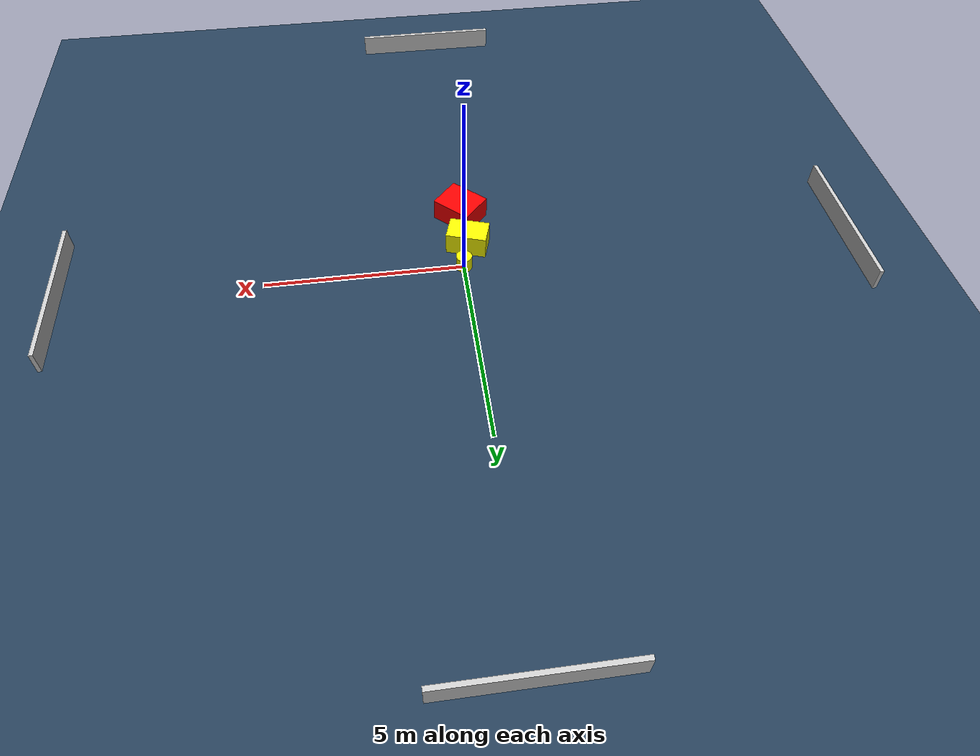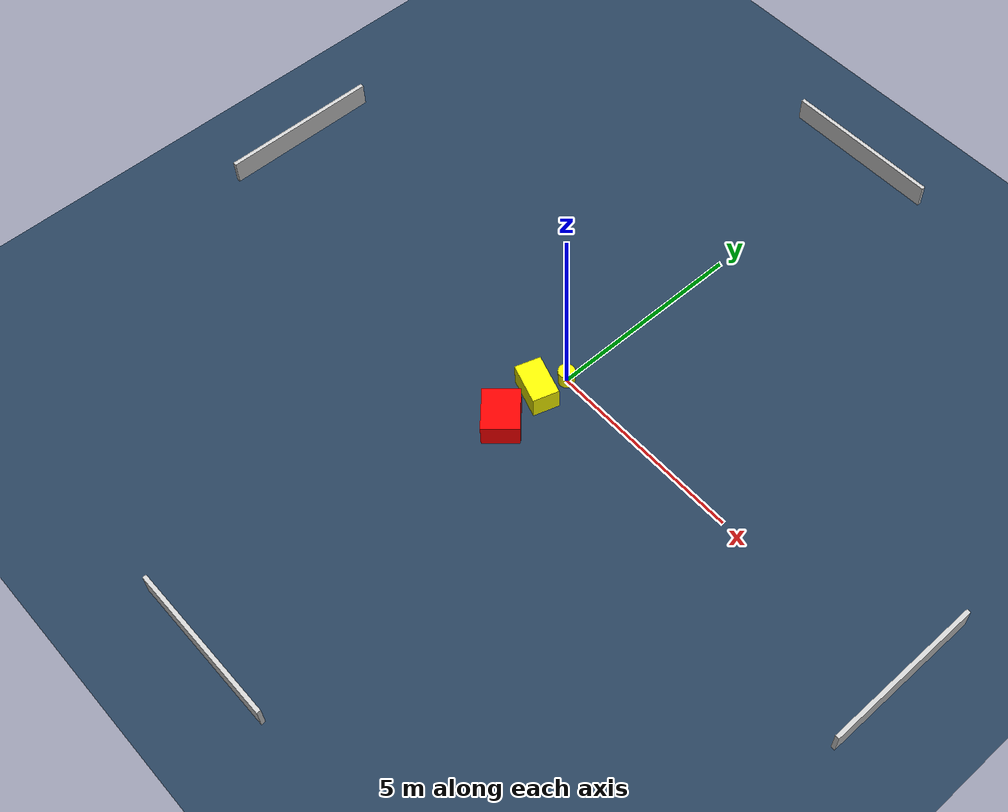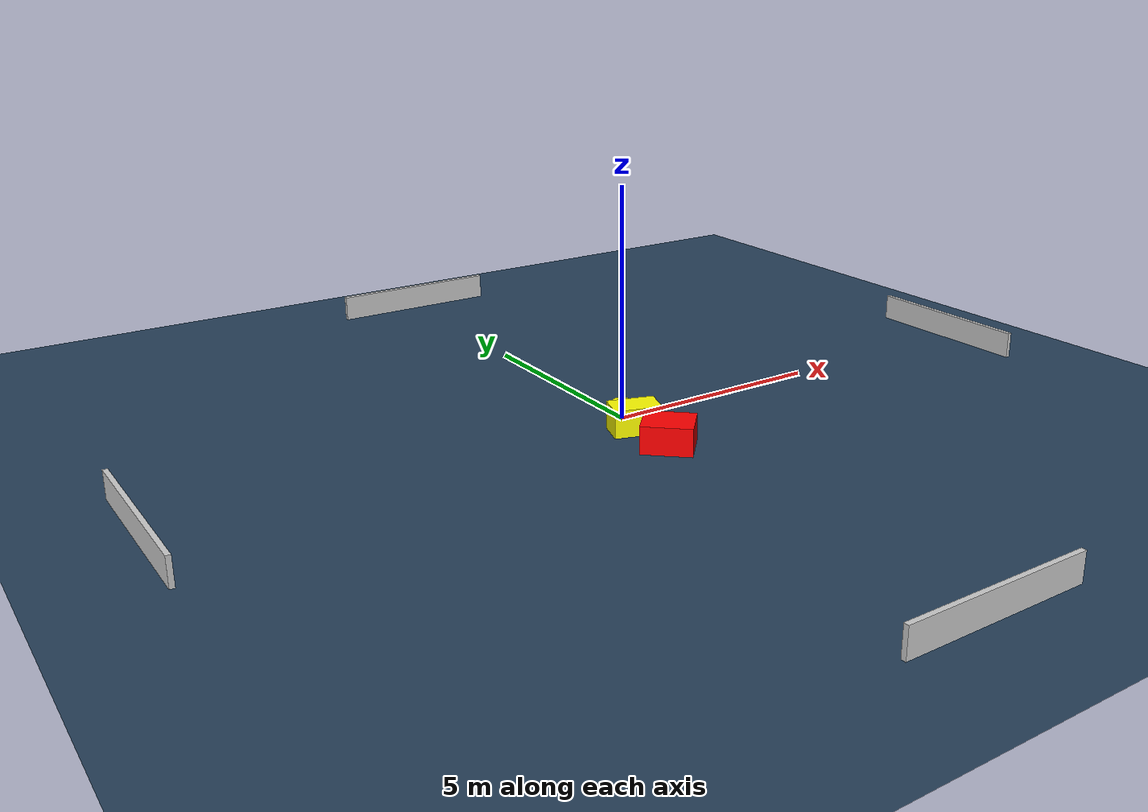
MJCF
<?xml version="1.0" ?>
<mujoco model="generated_environment">
  <option timestep="0.01" integrator="RK4" cone="elliptic"/>
  <default>
    <geom density="1"/>
  </default>
  <asset>
    <texture builtin="gradient" height="3072" name="skybox" rgb1="0.3 0.5 0.7" rgb2="0 0 0" type="skybox" width="512"/>
    <texture builtin="checker" height="300" name="groundplane" rgb1="0.2 0.3 0.4" rgb2="0.1 0.2 0.3" type="2d" width="300"/>
    <material name="groundplane" reflectance="0.2" texrepeat="5 5" texture="groundplane"/>
  </asset>
  <worldbody>
    <light dir="0 0 -1" directional="true" pos="0 0 1.5"/>
    <geom condim="3" friction="0.5 0.005 0.001" material="groundplane" name="floor" pos="0 0 0" size="0 0 0.05" type="plane"/>
    <body name="walls">
      <geom name="wall_1" condim="4" pos="-10.0 0.0 0.3" rgba="0.800000011920929 0.800000011920929 0.800000011920929 1.0" size="0.05 2.0 0.3" type="box"/>
      <geom name="wall_2" condim="4" pos="10.0 0.0 0.3" rgba="0.800000011920929 0.800000011920929 0.800000011920929 1.0" size="0.05 2.0 0.3" type="box"/>
      <geom name="wall_3" condim="4" pos="0.0 -10.0 0.3" rgba="0.800000011920929 0.800000011920929 0.800000011920929 1.0" size="2.0 0.05 0.3" type="box"/>
      <geom name="wall_4" condim="4" pos="0.0 10.0 0.3" rgba="0.800000011920929 0.800000011920929 0.800000011920929 1.0" size="2.0 0.05 0.3" type="box"/>
    </body>
    <body name="robot">
      <joint name="joint_x" type="slide" pos="0 0 0" axis="1 0 0"/>
      <joint name="joint_y" type="slide" pos="0 0 0" axis="0 1 0"/>
      <geom name="robot" type="cylinder" pos="0.0 0.0 0.2" size="0.2 0.2 0.0" mass="5.0" friction="1.0 0.005 0.0001" condim="4" rgba="1.0 1.0 0.0 1.0"/>
    </body>
    <body name="obstacle_1_movable">
      <geom name="obstacle_1_movable" condim="4" pos="-0.1900306959658685 -0.7329009331207621 0.3" euler="0 0 72.39805527956189" friction="0.0 0.005 0.001" rgba="1.0 1.0 0.0 1.0" size="0.3229261216716114 0.5120017470057601 0.3" type="box" mass="0.1"/>
      <joint type="free"/>
    </body>
    <body name="obstacle_2_static">
      <geom name="obstacle_2_static" condim="4" pos="-0.1343532208082294 -1.8534933752741705 0.3" euler="0 0 47.25728128173838" friction="0.0 0.005 0.001" rgba="1.0 0.0 0.0 1.0" size="0.4432242305203147 0.5362197052629678 0.3" type="box"/>
    </body>
  </worldbody>
  <actuator>
    <motor name="actuator_x" joint="joint_x" gear="1" ctrlrange="-1 1"/>
    <motor name="actuator_y" joint="joint_y" gear="1" ctrlrange="-1 1"/>
  </actuator>
</mujoco>
